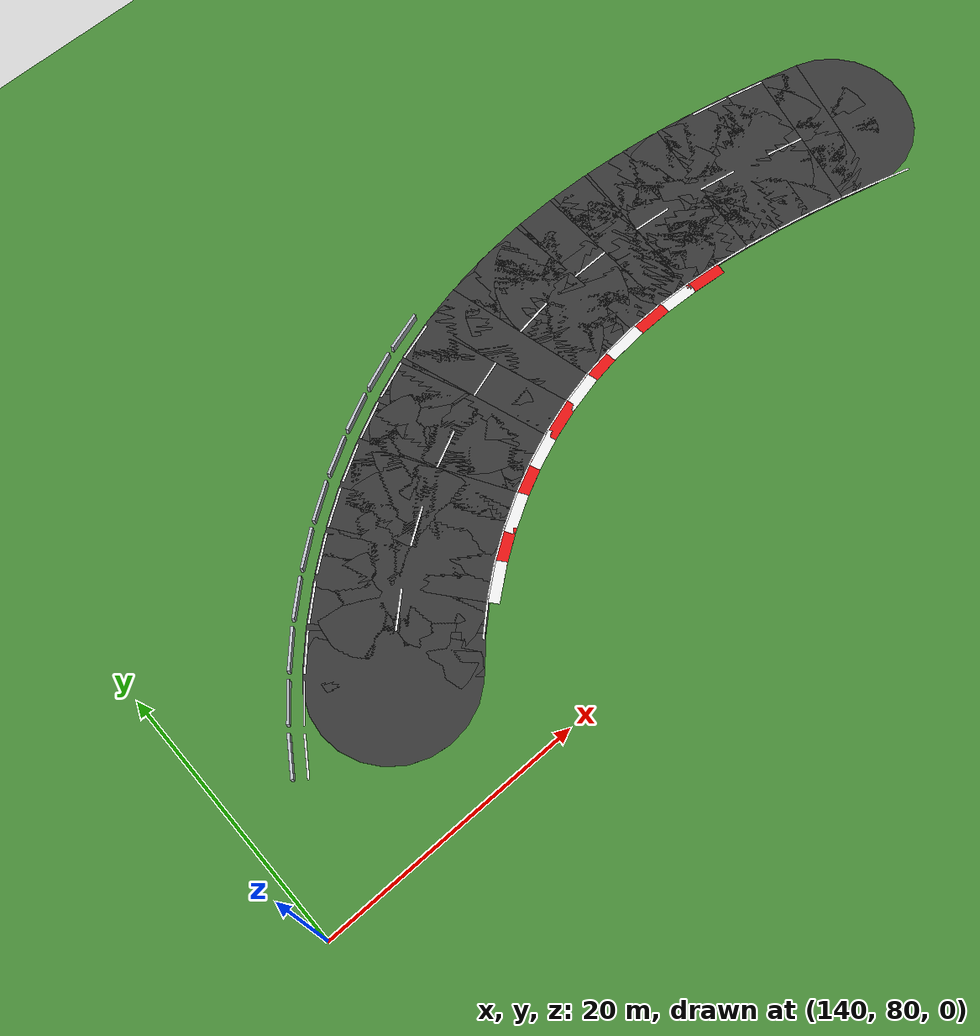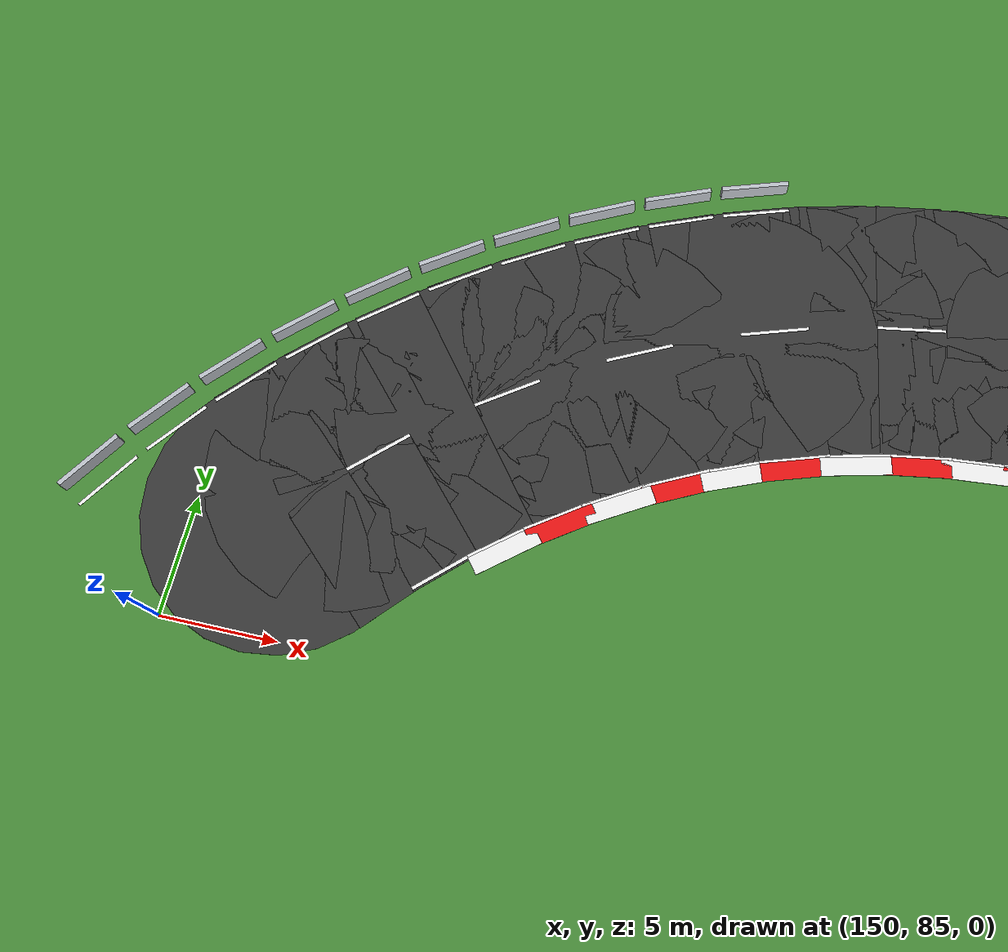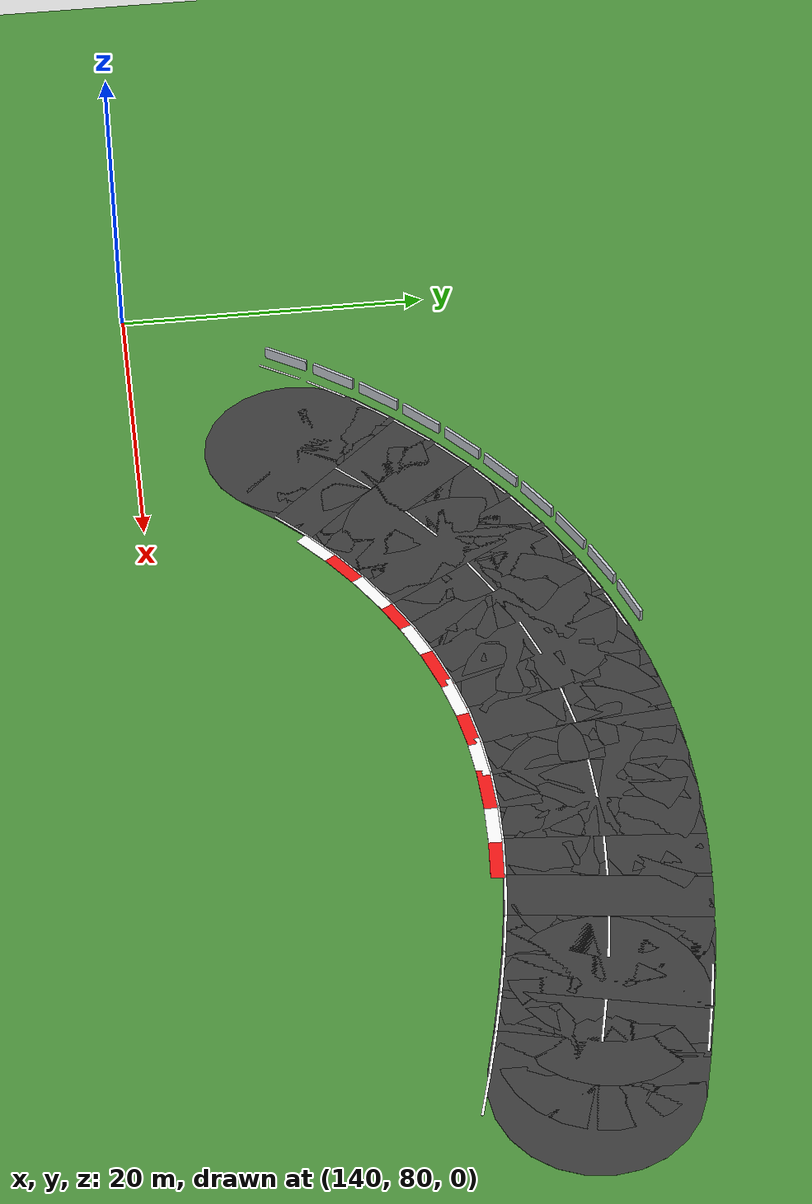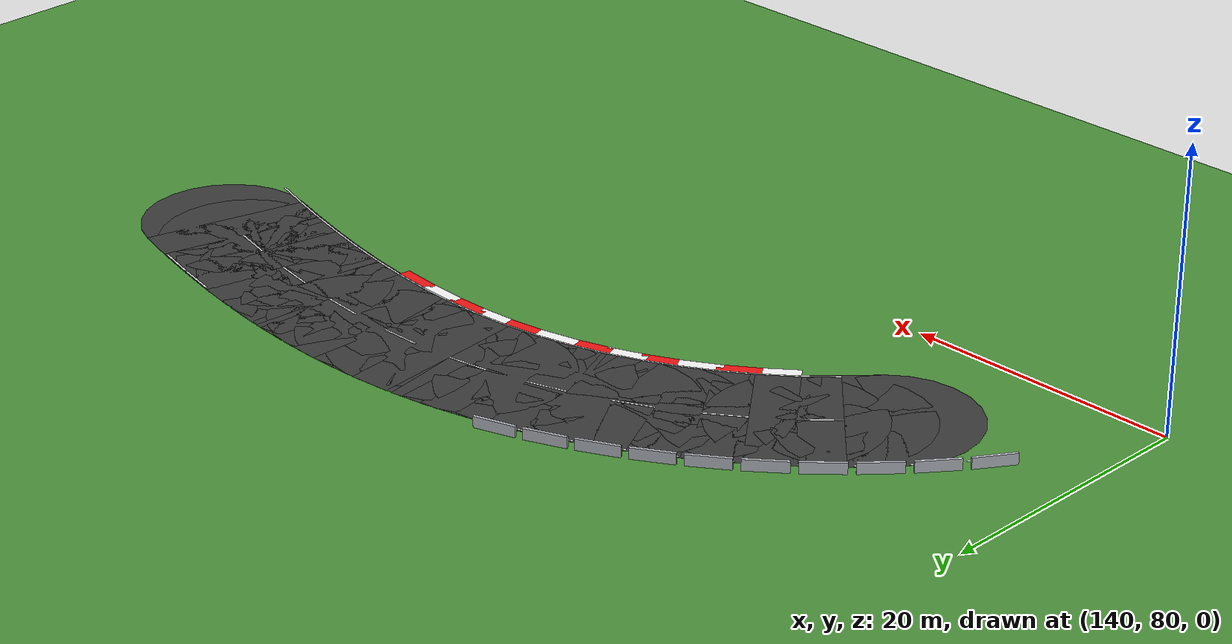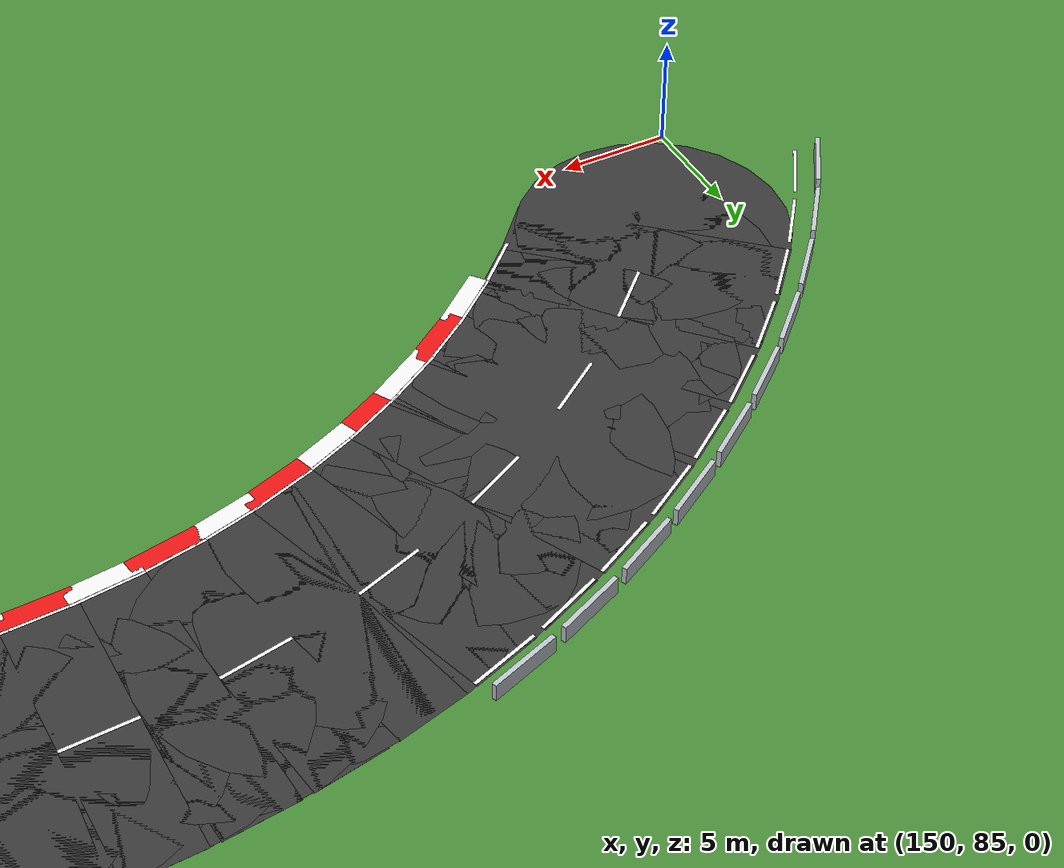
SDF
<sdf version="1.6">
 <world name="sem_silesia_ring_2026">
  <model name="ground_plane">
   <static>true</static>
   <link name="link">
    <collision name="collision">
     <geometry><plane><normal>0 0 1</normal><size>1200 1200</size></plane></geometry>
     <surface><friction><ode><mu>0.6</mu><mu2>0.6</mu2></ode></friction></surface>
    </collision>
    <visual name="visual">
     <geometry><plane><normal>0 0 1</normal><size>1200 1200</size></plane></geometry>
     <material><ambient>0.28 0.55 0.22 1</ambient><diffuse>0.28 0.55 0.22 1</diffuse></material>
    </visual>
   </link>
  </model>
  <model name="wl_L_s75">
   <static>true</static>
   <pose>146.0650 89.8981 0.0070 0 0 0.9914</pose>
   <link name="link">
    <visual name="v">
     <geometry><box><size>3.0017 0.1500 0.0080</size></box></geometry>
     <material><ambient>0.95 0.95 0.95 1</ambient><diffuse>0.95 0.95 0.95 1</diffuse></material>
    </visual>
   </link>
  </model>
  <model name="arm_outL_75">
   <static>true</static>
   <pose>145.2701 90.4182 0.4000 0 0 0.9914</pose>
   <link name="link">
    <visual name="v">
     <geometry><box><size>3.0017 0.2000 0.8000</size></box></geometry>
     <material><ambient>0.75 0.77 0.80 1</ambient><diffuse>0.75 0.77 0.80 1</diffuse></material>
    </visual>
    <collision name="c">
     <geometry><box><size>3.0017 0.2000 0.8000</size></box></geometry>
     <surface><friction><ode><mu>0.8</mu><mu2>0.8</mu2></ode></friction></surface>
    </collision>
   </link>
  </model>
  <model name="wl_L_s76">
   <static>true</static>
   <pose>148.0866 92.7280 0.0070 0 0 0.9096</pose>
   <link name="link">
    <visual name="v">
     <geometry><box><size>3.0017 0.1500 0.0080</size></box></geometry>
     <material><ambient>0.95 0.95 0.95 1</ambient><diffuse>0.95 0.95 0.95 1</diffuse></material>
    </visual>
   </link>
  </model>
  <model name="arm_outL_76">
   <static>true</static>
   <pose>147.3368 93.3113 0.4000 0 0 0.9096</pose>
   <link name="link">
    <visual name="v">
     <geometry><box><size>3.0017 0.2000 0.8000</size></box></geometry>
     <material><ambient>0.75 0.77 0.80 1</ambient><diffuse>0.75 0.77 0.80 1</diffuse></material>
    </visual>
    <collision name="c">
     <geometry><box><size>3.0017 0.2000 0.8000</size></box></geometry>
     <surface><friction><ode><mu>0.8</mu><mu2>0.8</mu2></ode></friction></surface>
    </collision>
   </link>
  </model>
  <model name="road_s77">
   <static>true</static>
   <pose>154.6374 91.4285 0.0030 0 0 0.8307</pose>
   <link name="link">
    <visual name="v">
     <geometry><box><size>3.0018 12.0000 0.0060</size></box></geometry>
     <material><ambient>0.22 0.22 0.22 1</ambient><diffuse>0.22 0.22 0.22 1</diffuse></material>
    </visual>
    <collision name="c">
     <geometry><box><size>3.0018 12.0000 0.0060</size></box></geometry>
     <surface><friction><ode><mu>0.9</mu><mu2>0.9</mu2></ode></friction></surface>
    </collision>
   </link>
  </model>
  <model name="road_jnt77">
   <static>true</static>
   <pose>153.6253 90.3202 0.0030 0 0 0</pose>
   <link name="link">
    <visual name="v">
     <geometry><cylinder><radius>6.0000</radius><length>0.0060</length></cylinder></geometry>
     <material><ambient>0.22 0.22 0.22 1</ambient><diffuse>0.22 0.22 0.22 1</diffuse></material>
    </visual>
    <collision name="c">
     <geometry><cylinder><radius>6.0000</radius><length>0.0060</length></cylinder></geometry>
     <surface><friction><ode><mu>0.9</mu><mu2>0.9</mu2></ode></friction></surface>
    </collision>
   </link>
  </model>
  <model name="wl_L_s77">
   <static>true</static>
   <pose>150.3177 95.3733 0.0070 0 0 0.8307</pose>
   <link name="link">
    <visual name="v">
     <geometry><box><size>3.0018 0.1500 0.0080</size></box></geometry>
     <material><ambient>0.95 0.95 0.95 1</ambient><diffuse>0.95 0.95 0.95 1</diffuse></material>
    </visual>
   </link>
  </model>
  <model name="arm_outL_77">
   <static>true</static>
   <pose>149.6162 96.0140 0.4000 0 0 0.8307</pose>
   <link name="link">
    <visual name="v">
     <geometry><box><size>3.0018 0.2000 0.8000</size></box></geometry>
     <material><ambient>0.75 0.77 0.80 1</ambient><diffuse>0.75 0.77 0.80 1</diffuse></material>
    </visual>
    <collision name="c">
     <geometry><box><size>3.0018 0.2000 0.8000</size></box></geometry>
     <surface><friction><ode><mu>0.8</mu><mu2>0.8</mu2></ode></friction></surface>
    </collision>
   </link>
  </model>
  <model name="road_s78">
   <static>true</static>
   <pose>156.7433 93.5646 0.0030 0 0 0.7544</pose>
   <link name="link">
    <visual name="v">
     <geometry><box><size>3.0018 12.0000 0.0060</size></box></geometry>
     <material><ambient>0.22 0.22 0.22 1</ambient><diffuse>0.22 0.22 0.22 1</diffuse></material>
    </visual>
    <collision name="c">
     <geometry><box><size>3.0018 12.0000 0.0060</size></box></geometry>
     <surface><friction><ode><mu>0.9</mu><mu2>0.9</mu2></ode></friction></surface>
    </collision>
   </link>
  </model>
  <model name="road_jnt78">
   <static>true</static>
   <pose>155.6495 92.5368 0.0030 0 0 0</pose>
   <link name="link">
    <visual name="v">
     <geometry><cylinder><radius>6.0000</radius><length>0.0060</length></cylinder></geometry>
     <material><ambient>0.22 0.22 0.22 1</ambient><diffuse>0.22 0.22 0.22 1</diffuse></material>
    </visual>
    <collision name="c">
     <geometry><cylinder><radius>6.0000</radius><length>0.0060</length></cylinder></geometry>
     <surface><friction><ode><mu>0.9</mu><mu2>0.9</mu2></ode></friction></surface>
    </collision>
   </link>
  </model>
  <model name="wl_L_s78">
   <static>true</static>
   <pose>152.7371 97.8276 0.0070 0 0 0.7544</pose>
   <link name="link">
    <visual name="v">
     <geometry><box><size>3.0018 0.1500 0.0080</size></box></geometry>
     <material><ambient>0.95 0.95 0.95 1</ambient><diffuse>0.95 0.95 0.95 1</diffuse></material>
    </visual>
   </link>
  </model>
  <model name="wl_R_s78">
   <static>true</static>
   <pose>160.7495 89.3016 0.0070 0 0 0.7544</pose>
   <link name="link">
    <visual name="v">
     <geometry><box><size>3.0018 0.1500 0.0080</size></box></geometry>
     <material><ambient>0.95 0.95 0.95 1</ambient><diffuse>0.95 0.95 0.95 1</diffuse></material>
    </visual>
   </link>
  </model>
  <model name="cd_s78">
   <static>true</static>
   <pose>156.7433 93.5646 0.0070 0 0 0.7544</pose>
   <link name="link">
    <visual name="v">
     <geometry><box><size>3.0018 0.1500 0.0080</size></box></geometry>
     <material><ambient>0.95 0.95 0.95 1</ambient><diffuse>0.95 0.95 0.95 1</diffuse></material>
    </visual>
   </link>
  </model>
  <model name="arm_outL_78">
   <static>true</static>
   <pose>152.0865 98.5199 0.4000 0 0 0.7544</pose>
   <link name="link">
    <visual name="v">
     <geometry><box><size>3.0018 0.2000 0.8000</size></box></geometry>
     <material><ambient>0.75 0.77 0.80 1</ambient><diffuse>0.75 0.77 0.80 1</diffuse></material>
    </visual>
    <collision name="c">
     <geometry><box><size>3.0018 0.2000 0.8000</size></box></geometry>
     <surface><friction><ode><mu>0.8</mu><mu2>0.8</mu2></ode></friction></surface>
    </collision>
   </link>
  </model>
  <model name="road_s79">
   <static>true</static>
   <pose>159.0042 95.5361 0.0030 0 0 0.6799</pose>
   <link name="link">
    <visual name="v">
     <geometry><box><size>3.0019 12.0000 0.0060</size></box></geometry>
     <material><ambient>0.22 0.22 0.22 1</ambient><diffuse>0.22 0.22 0.22 1</diffuse></material>
    </visual>
    <collision name="c">
     <geometry><box><size>3.0019 12.0000 0.0060</size></box></geometry>
     <surface><friction><ode><mu>0.9</mu><mu2>0.9</mu2></ode></friction></surface>
    </collision>
   </link>
  </model>
  <model name="road_jnt79">
   <static>true</static>
   <pose>157.8370 94.5925 0.0030 0 0 0</pose>
   <link name="link">
    <visual name="v">
     <geometry><cylinder><radius>6.0000</radius><length>0.0060</length></cylinder></geometry>
     <material><ambient>0.22 0.22 0.22 1</ambient><diffuse>0.22 0.22 0.22 1</diffuse></material>
    </visual>
    <collision name="c">
     <geometry><cylinder><radius>6.0000</radius><length>0.0060</length></cylinder></geometry>
     <surface><friction><ode><mu>0.9</mu><mu2>0.9</mu2></ode></friction></surface>
    </collision>
   </link>
  </model>
  <model name="wl_L_s79">
   <static>true</static>
   <pose>155.3262 100.0853 0.0070 0 0 0.6799</pose>
   <link name="link">
    <visual name="v">
     <geometry><box><size>3.0019 0.1500 0.0080</size></box></geometry>
     <material><ambient>0.95 0.95 0.95 1</ambient><diffuse>0.95 0.95 0.95 1</diffuse></material>
    </visual>
   </link>
  </model>
  <model name="wl_R_s79">
   <static>true</static>
   <pose>162.6822 90.9870 0.0070 0 0 0.6799</pose>
   <link name="link">
    <visual name="v">
     <geometry><box><size>3.0019 0.1500 0.0080</size></box></geometry>
     <material><ambient>0.95 0.95 0.95 1</ambient><diffuse>0.95 0.95 0.95 1</diffuse></material>
    </visual>
   </link>
  </model>
  <model name="kerb_R_79">
   <static>true</static>
   <pose>162.9651 90.6370 0.0120 0 0 0.6799</pose>
   <link name="link">
    <visual name="v">
     <geometry><box><size>3.0019 0.8000 0.0160</size></box></geometry>
     <material><ambient>0.95 0.95 0.95 1</ambient><diffuse>0.95 0.95 0.95 1</diffuse></material>
    </visual>
   </link>
  </model>
  <model name="arm_outL_79">
   <static>true</static>
   <pose>154.7289 100.8241 0.4000 0 0 0.6799</pose>
   <link name="link">
    <visual name="v">
     <geometry><box><size>3.0019 0.2000 0.8000</size></box></geometry>
     <material><ambient>0.75 0.77 0.80 1</ambient><diffuse>0.75 0.77 0.80 1</diffuse></material>
    </visual>
    <collision name="c">
     <geometry><box><size>3.0019 0.2000 0.8000</size></box></geometry>
     <surface><friction><ode><mu>0.8</mu><mu2>0.8</mu2></ode></friction></surface>
    </collision>
   </link>
  </model>
  <model name="road_s80">
   <static>true</static>
   <pose>161.4044 97.3356 0.0030 0 0 0.6067</pose>
   <link name="link">
    <visual name="v">
     <geometry><box><size>3.0019 12.0000 0.0060</size></box></geometry>
     <material><ambient>0.22 0.22 0.22 1</ambient><diffuse>0.22 0.22 0.22 1</diffuse></material>
    </visual>
    <collision name="c">
     <geometry><box><size>3.0019 12.0000 0.0060</size></box></geometry>
     <surface><friction><ode><mu>0.9</mu><mu2>0.9</mu2></ode></friction></surface>
    </collision>
   </link>
  </model>
  <model name="road_jnt80">
   <static>true</static>
   <pose>160.1714 96.4798 0.0030 0 0 0</pose>
   <link name="link">
    <visual name="v">
     <geometry><cylinder><radius>6.0000</radius><length>0.0060</length></cylinder></geometry>
     <material><ambient>0.22 0.22 0.22 1</ambient><diffuse>0.22 0.22 0.22 1</diffuse></material>
    </visual>
    <collision name="c">
     <geometry><cylinder><radius>6.0000</radius><length>0.0060</length></cylinder></geometry>
     <surface><friction><ode><mu>0.9</mu><mu2>0.9</mu2></ode></friction></surface>
    </collision>
   </link>
  </model>
  <model name="wl_L_s80">
   <static>true</static>
   <pose>158.0688 102.1415 0.0070 0 0 0.6067</pose>
   <link name="link">
    <visual name="v">
     <geometry><box><size>3.0019 0.1500 0.0080</size></box></geometry>
     <material><ambient>0.95 0.95 0.95 1</ambient><diffuse>0.95 0.95 0.95 1</diffuse></material>
    </visual>
   </link>
  </model>
  <model name="wl_R_s80">
   <static>true</static>
   <pose>164.7400 92.5297 0.0070 0 0 0.6067</pose>
   <link name="link">
    <visual name="v">
     <geometry><box><size>3.0019 0.1500 0.0080</size></box></geometry>
     <material><ambient>0.95 0.95 0.95 1</ambient><diffuse>0.95 0.95 0.95 1</diffuse></material>
    </visual>
   </link>
  </model>
  <model name="cd_s80">
   <static>true</static>
   <pose>161.4044 97.3356 0.0070 0 0 0.6067</pose>
   <link name="link">
    <visual name="v">
     <geometry><box><size>3.0019 0.1500 0.0080</size></box></geometry>
     <material><ambient>0.95 0.95 0.95 1</ambient><diffuse>0.95 0.95 0.95 1</diffuse></material>
    </visual>
   </link>
  </model>
  <model name="kerb_R_80">
   <static>true</static>
   <pose>164.9966 92.1601 0.0120 0 0 0.6067</pose>
   <link name="link">
    <visual name="v">
     <geometry><box><size>3.0019 0.8000 0.0160</size></box></geometry>
     <material><ambient>0.92 0.08 0.08 1</ambient><diffuse>0.92 0.08 0.08 1</diffuse></material>
    </visual>
   </link>
  </model>
  <model name="arm_outL_80">
   <static>true</static>
   <pose>157.5271 102.9219 0.4000 0 0 0.6067</pose>
   <link name="link">
    <visual name="v">
     <geometry><box><size>3.0019 0.2000 0.8000</size></box></geometry>
     <material><ambient>0.75 0.77 0.80 1</ambient><diffuse>0.75 0.77 0.80 1</diffuse></material>
    </visual>
    <collision name="c">
     <geometry><box><size>3.0019 0.2000 0.8000</size></box></geometry>
     <surface><friction><ode><mu>0.8</mu><mu2>0.8</mu2></ode></friction></surface>
    </collision>
   </link>
  </model>
  <model name="road_s81">
   <static>true</static>
   <pose>163.9293 98.9557 0.0030 0 0 0.5342</pose>
   <link name="link">
    <visual name="v">
     <geometry><box><size>3.0019 12.0000 0.0060</size></box></geometry>
     <material><ambient>0.22 0.22 0.22 1</ambient><diffuse>0.22 0.22 0.22 1</diffuse></material>
    </visual>
    <collision name="c">
     <geometry><box><size>3.0019 12.0000 0.0060</size></box></geometry>
     <surface><friction><ode><mu>0.9</mu><mu2>0.9</mu2></ode></friction></surface>
    </collision>
   </link>
  </model>
  <model name="road_jnt81">
   <static>true</static>
   <pose>162.6375 98.1914 0.0030 0 0 0</pose>
   <link name="link">
    <visual name="v">
     <geometry><cylinder><radius>6.0000</radius><length>0.0060</length></cylinder></geometry>
     <material><ambient>0.22 0.22 0.22 1</ambient><diffuse>0.22 0.22 0.22 1</diffuse></material>
    </visual>
    <collision name="c">
     <geometry><cylinder><radius>6.0000</radius><length>0.0060</length></cylinder></geometry>
     <surface><friction><ode><mu>0.9</mu><mu2>0.9</mu2></ode></friction></surface>
    </collision>
   </link>
  </model>
  <model name="wl_L_s81">
   <static>true</static>
   <pose>160.9506 103.9906 0.0070 0 0 0.5342</pose>
   <link name="link">
    <visual name="v">
     <geometry><box><size>3.0019 0.1500 0.0080</size></box></geometry>
     <material><ambient>0.95 0.95 0.95 1</ambient><diffuse>0.95 0.95 0.95 1</diffuse></material>
    </visual>
   </link>
  </model>
  <model name="wl_R_s81">
   <static>true</static>
   <pose>166.9079 93.9207 0.0070 0 0 0.5342</pose>
   <link name="link">
    <visual name="v">
     <geometry><box><size>3.0019 0.1500 0.0080</size></box></geometry>
     <material><ambient>0.95 0.95 0.95 1</ambient><diffuse>0.95 0.95 0.95 1</diffuse></material>
    </visual>
   </link>
  </model>
  <model name="kerb_R_81">
   <static>true</static>
   <pose>167.1370 93.5334 0.0120 0 0 0.5342</pose>
   <link name="link">
    <visual name="v">
     <geometry><box><size>3.0019 0.8000 0.0160</size></box></geometry>
     <material><ambient>0.95 0.95 0.95 1</ambient><diffuse>0.95 0.95 0.95 1</diffuse></material>
    </visual>
   </link>
  </model>
  <model name="arm_outL_81">
   <static>true</static>
   <pose>160.4669 104.8082 0.4000 0 0 0.5342</pose>
   <link name="link">
    <visual name="v">
     <geometry><box><size>3.0019 0.2000 0.8000</size></box></geometry>
     <material><ambient>0.75 0.77 0.80 1</ambient><diffuse>0.75 0.77 0.80 1</diffuse></material>
    </visual>
    <collision name="c">
     <geometry><box><size>3.0019 0.2000 0.8000</size></box></geometry>
     <surface><friction><ode><mu>0.8</mu><mu2>0.8</mu2></ode></friction></surface>
    </collision>
   </link>
  </model>
  <model name="road_s82">
   <static>true</static>
   <pose>166.5649 100.3885 0.0030 0 0 0.4617</pose>
   <link name="link">
    <visual name="v">
     <geometry><box><size>3.0019 12.0000 0.0060</size></box></geometry>
     <material><ambient>0.22 0.22 0.22 1</ambient><diffuse>0.22 0.22 0.22 1</diffuse></material>
    </visual>
    <collision name="c">
     <geometry><box><size>3.0019 12.0000 0.0060</size></box></geometry>
     <surface><friction><ode><mu>0.9</mu><mu2>0.9</mu2></ode></friction></surface>
    </collision>
   </link>
  </model>
  <model name="road_jnt82">
   <static>true</static>
   <pose>165.2211 99.7199 0.0030 0 0 0</pose>
   <link name="link">
    <visual name="v">
     <geometry><cylinder><radius>6.0000</radius><length>0.0060</length></cylinder></geometry>
     <material><ambient>0.22 0.22 0.22 1</ambient><diffuse>0.22 0.22 0.22 1</diffuse></material>
    </visual>
    <collision name="c">
     <geometry><cylinder><radius>6.0000</radius><length>0.0060</length></cylinder></geometry>
     <surface><friction><ode><mu>0.9</mu><mu2>0.9</mu2></ode></friction></surface>
    </collision>
   </link>
  </model>
  <model name="wl_L_s82">
   <static>true</static>
   <pose>163.9589 105.6260 0.0070 0 0 0.4617</pose>
   <link name="link">
    <visual name="v">
     <geometry><box><size>3.0019 0.1500 0.0080</size></box></geometry>
     <material><ambient>0.95 0.95 0.95 1</ambient><diffuse>0.95 0.95 0.95 1</diffuse></material>
    </visual>
   </link>
  </model>
  <model name="wl_R_s82">
   <static>true</static>
   <pose>169.1709 95.1510 0.0070 0 0 0.4617</pose>
   <link name="link">
    <visual name="v">
     <geometry><box><size>3.0019 0.1500 0.0080</size></box></geometry>
     <material><ambient>0.95 0.95 0.95 1</ambient><diffuse>0.95 0.95 0.95 1</diffuse></material>
    </visual>
   </link>
  </model>
  <model name="cd_s82">
   <static>true</static>
   <pose>166.5649 100.3885 0.0070 0 0 0.4617</pose>
   <link name="link">
    <visual name="v">
     <geometry><box><size>3.0019 0.1500 0.0080</size></box></geometry>
     <material><ambient>0.95 0.95 0.95 1</ambient><diffuse>0.95 0.95 0.95 1</diffuse></material>
    </visual>
   </link>
  </model>
  <model name="kerb_R_82">
   <static>true</static>
   <pose>169.3713 94.7481 0.0120 0 0 0.4617</pose>
   <link name="link">
    <visual name="v">
     <geometry><box><size>3.0019 0.8000 0.0160</size></box></geometry>
     <material><ambient>0.92 0.08 0.08 1</ambient><diffuse>0.92 0.08 0.08 1</diffuse></material>
    </visual>
   </link>
  </model>
  <model name="arm_outL_82">
   <static>true</static>
   <pose>163.5357 106.4765 0.4000 0 0 0.4617</pose>
   <link name="link">
    <visual name="v">
     <geometry><box><size>3.0019 0.2000 0.8000</size></box></geometry>
     <material><ambient>0.75 0.77 0.80 1</ambient><diffuse>0.75 0.77 0.80 1</diffuse></material>
    </visual>
    <collision name="c">
     <geometry><box><size>3.0019 0.2000 0.8000</size></box></geometry>
     <surface><friction><ode><mu>0.8</mu><mu2>0.8</mu2></ode></friction></surface>
    </collision>
   </link>
  </model>
  <model name="road_s83">
   <static>true</static>
   <pose>169.2977 101.6257 0.0030 0 0 0.3885</pose>
   <link name="link">
    <visual name="v">
     <geometry><box><size>3.0019 12.0000 0.0060</size></box></geometry>
     <material><ambient>0.22 0.22 0.22 1</ambient><diffuse>0.22 0.22 0.22 1</diffuse></material>
    </visual>
    <collision name="c">
     <geometry><box><size>3.0019 12.0000 0.0060</size></box></geometry>
     <surface><friction><ode><mu>0.9</mu><mu2>0.9</mu2></ode></friction></surface>
    </collision>
   </link>
  </model>
  <model name="road_jnt83">
   <static>true</static>
   <pose>167.9086 101.0571 0.0030 0 0 0</pose>
   <link name="link">
    <visual name="v">
     <geometry><cylinder><radius>6.0000</radius><length>0.0060</length></cylinder></geometry>
     <material><ambient>0.22 0.22 0.22 1</ambient><diffuse>0.22 0.22 0.22 1</diffuse></material>
    </visual>
    <collision name="c">
     <geometry><cylinder><radius>6.0000</radius><length>0.0060</length></cylinder></geometry>
     <surface><friction><ode><mu>0.9</mu><mu2>0.9</mu2></ode></friction></surface>
    </collision>
   </link>
  </model>
  <model name="wl_L_s83">
   <static>true</static>
   <pose>167.0815 107.0397 0.0070 0 0 0.3885</pose>
   <link name="link">
    <visual name="v">
     <geometry><box><size>3.0019 0.1500 0.0080</size></box></geometry>
     <material><ambient>0.95 0.95 0.95 1</ambient><diffuse>0.95 0.95 0.95 1</diffuse></material>
    </visual>
   </link>
  </model>
  <model name="wl_R_s83">
   <static>true</static>
   <pose>171.5139 96.2118 0.0070 0 0 0.3885</pose>
   <link name="link">
    <visual name="v">
     <geometry><box><size>3.0019 0.1500 0.0080</size></box></geometry>
     <material><ambient>0.95 0.95 0.95 1</ambient><diffuse>0.95 0.95 0.95 1</diffuse></material>
    </visual>
   </link>
  </model>
  <model name="kerb_R_83">
   <static>true</static>
   <pose>171.6844 95.7953 0.0120 0 0 0.3885</pose>
   <link name="link">
    <visual name="v">
     <geometry><box><size>3.0019 0.8000 0.0160</size></box></geometry>
     <material><ambient>0.95 0.95 0.95 1</ambient><diffuse>0.95 0.95 0.95 1</diffuse></material>
    </visual>
   </link>
  </model>
  <model name="arm_outL_83">
   <static>true</static>
   <pose>166.7216 107.9189 0.4000 0 0 0.3885</pose>
   <link name="link">
    <visual name="v">
     <geometry><box><size>3.0019 0.2000 0.8000</size></box></geometry>
     <material><ambient>0.75 0.77 0.80 1</ambient><diffuse>0.75 0.77 0.80 1</diffuse></material>
    </visual>
    <collision name="c">
     <geometry><box><size>3.0019 0.2000 0.8000</size></box></geometry>
     <surface><friction><ode><mu>0.8</mu><mu2>0.8</mu2></ode></friction></surface>
    </collision>
   </link>
  </model>
  <model name="road_s84">
   <static>true</static>
   <pose>172.1142 102.6581 0.0030 0 0 0.3141</pose>
   <link name="link">
    <visual name="v">
     <geometry><box><size>3.0018 12.0000 0.0060</size></box></geometry>
     <material><ambient>0.22 0.22 0.22 1</ambient><diffuse>0.22 0.22 0.22 1</diffuse></material>
    </visual>
    <collision name="c">
     <geometry><box><size>3.0018 12.0000 0.0060</size></box></geometry>
     <surface><friction><ode><mu>0.9</mu><mu2>0.9</mu2></ode></friction></surface>
    </collision>
   </link>
  </model>
  <model name="road_jnt84">
   <static>true</static>
   <pose>170.6868 102.1943 0.0030 0 0 0</pose>
   <link name="link">
    <visual name="v">
     <geometry><cylinder><radius>6.0000</radius><length>0.0060</length></cylinder></geometry>
     <material><ambient>0.22 0.22 0.22 1</ambient><diffuse>0.22 0.22 0.22 1</diffuse></material>
    </visual>
    <collision name="c">
     <geometry><cylinder><radius>6.0000</radius><length>0.0060</length></cylinder></geometry>
     <surface><friction><ode><mu>0.9</mu><mu2>0.9</mu2></ode></friction></surface>
    </collision>
   </link>
  </model>
  <model name="wl_L_s84">
   <static>true</static>
   <pose>170.3068 108.2218 0.0070 0 0 0.3141</pose>
   <link name="link">
    <visual name="v">
     <geometry><box><size>3.0018 0.1500 0.0080</size></box></geometry>
     <material><ambient>0.95 0.95 0.95 1</ambient><diffuse>0.95 0.95 0.95 1</diffuse></material>
    </visual>
   </link>
  </model>
  <model name="wl_R_s84">
   <static>true</static>
   <pose>173.9217 97.0943 0.0070 0 0 0.3141</pose>
   <link name="link">
    <visual name="v">
     <geometry><box><size>3.0018 0.1500 0.0080</size></box></geometry>
     <material><ambient>0.95 0.95 0.95 1</ambient><diffuse>0.95 0.95 0.95 1</diffuse></material>
    </visual>
   </link>
  </model>
  <model name="cd_s84">
   <static>true</static>
   <pose>172.1142 102.6581 0.0070 0 0 0.3141</pose>
   <link name="link">
    <visual name="v">
     <geometry><box><size>3.0018 0.1500 0.0080</size></box></geometry>
     <material><ambient>0.95 0.95 0.95 1</ambient><diffuse>0.95 0.95 0.95 1</diffuse></material>
    </visual>
   </link>
  </model>
  <model name="kerb_R_84">
   <static>true</static>
   <pose>174.0607 96.6663 0.0120 0 0 0.3141</pose>
   <link name="link">
    <visual name="v">
     <geometry><box><size>3.0018 0.8000 0.0160</size></box></geometry>
     <material><ambient>0.92 0.08 0.08 1</ambient><diffuse>0.92 0.08 0.08 1</diffuse></material>
    </visual>
   </link>
  </model>
  <model name="arm_outL_84">
   <static>true</static>
   <pose>170.0132 109.1254 0.4000 0 0 0.3141</pose>
   <link name="link">
    <visual name="v">
     <geometry><box><size>3.0018 0.2000 0.8000</size></box></geometry>
     <material><ambient>0.75 0.77 0.80 1</ambient><diffuse>0.75 0.77 0.80 1</diffuse></material>
    </visual>
    <collision name="c">
     <geometry><box><size>3.0018 0.2000 0.8000</size></box></geometry>
     <surface><friction><ode><mu>0.8</mu><mu2>0.8</mu2></ode></friction></surface>
    </collision>
   </link>
  </model>
  <model name="road_s85">
   <static>true</static>
   <pose>175.0004 103.4754 0.0030 0 0 0.2378</pose>
   <link name="link">
    <visual name="v">
     <geometry><box><size>3.0018 12.0000 0.0060</size></box></geometry>
     <material><ambient>0.22 0.22 0.22 1</ambient><diffuse>0.22 0.22 0.22 1</diffuse></material>
    </visual>
    <collision name="c">
     <geometry><box><size>3.0018 12.0000 0.0060</size></box></geometry>
     <surface><friction><ode><mu>0.9</mu><mu2>0.9</mu2></ode></friction></surface>
    </collision>
   </link>
  </model>
  <model name="road_jnt85">
   <static>true</static>
   <pose>173.5417 103.1218 0.0030 0 0 0</pose>
   <link name="link">
    <visual name="v">
     <geometry><cylinder><radius>6.0000</radius><length>0.0060</length></cylinder></geometry>
     <material><ambient>0.22 0.22 0.22 1</ambient><diffuse>0.22 0.22 0.22 1</diffuse></material>
    </visual>
    <collision name="c">
     <geometry><cylinder><radius>6.0000</radius><length>0.0060</length></cylinder></geometry>
     <surface><friction><ode><mu>0.9</mu><mu2>0.9</mu2></ode></friction></surface>
    </collision>
   </link>
  </model>
  <model name="wl_R_s85">
   <static>true</static>
   <pose>176.3786 97.7901 0.0070 0 0 0.2378</pose>
   <link name="link">
    <visual name="v">
     <geometry><box><size>3.0018 0.1500 0.0080</size></box></geometry>
     <material><ambient>0.95 0.95 0.95 1</ambient><diffuse>0.95 0.95 0.95 1</diffuse></material>
    </visual>
   </link>
  </model>
  <model name="kerb_R_85">
   <static>true</static>
   <pose>176.4847 97.3528 0.0120 0 0 0.2378</pose>
   <link name="link">
    <visual name="v">
     <geometry><box><size>3.0018 0.8000 0.0160</size></box></geometry>
     <material><ambient>0.95 0.95 0.95 1</ambient><diffuse>0.95 0.95 0.95 1</diffuse></material>
    </visual>
   </link>
  </model>
  <model name="road_s86">
   <static>true</static>
   <pose>177.9407 104.0685 0.0030 0 0 0.1602</pose>
   <link name="link">
    <visual name="v">
     <geometry><box><size>3.0018 12.0000 0.0060</size></box></geometry>
     <material><ambient>0.22 0.22 0.22 1</ambient><diffuse>0.22 0.22 0.22 1</diffuse></material>
    </visual>
    <collision name="c">
     <geometry><box><size>3.0018 12.0000 0.0060</size></box></geometry>
     <surface><friction><ode><mu>0.9</mu><mu2>0.9</mu2></ode></friction></surface>
    </collision>
   </link>
  </model>
  <model name="road_jnt86">
   <static>true</static>
   <pose>176.4590 103.8290 0.0030 0 0 0</pose>
   <link name="link">
    <visual name="v">
     <geometry><cylinder><radius>6.0000</radius><length>0.0060</length></cylinder></geometry>
     <material><ambient>0.22 0.22 0.22 1</ambient><diffuse>0.22 0.22 0.22 1</diffuse></material>
    </visual>
    <collision name="c">
     <geometry><cylinder><radius>6.0000</radius><length>0.0060</length></cylinder></geometry>
     <surface><friction><ode><mu>0.9</mu><mu2>0.9</mu2></ode></friction></surface>
    </collision>
   </link>
  </model>
  <model name="wl_R_s86">
   <static>true</static>
   <pose>178.8741 98.2935 0.0070 0 0 0.1602</pose>
   <link name="link">
    <visual name="v">
     <geometry><box><size>3.0018 0.1500 0.0080</size></box></geometry>
     <material><ambient>0.95 0.95 0.95 1</ambient><diffuse>0.95 0.95 0.95 1</diffuse></material>
    </visual>
   </link>
  </model>
  <model name="cd_s86">
   <static>true</static>
   <pose>177.9407 104.0685 0.0070 0 0 0.1602</pose>
   <link name="link">
    <visual name="v">
     <geometry><box><size>3.0018 0.1500 0.0080</size></box></geometry>
     <material><ambient>0.95 0.95 0.95 1</ambient><diffuse>0.95 0.95 0.95 1</diffuse></material>
    </visual>
   </link>
  </model>
  <model name="kerb_R_86">
   <static>true</static>
   <pose>178.9459 97.8492 0.0120 0 0 0.1602</pose>
   <link name="link">
    <visual name="v">
     <geometry><box><size>3.0018 0.8000 0.0160</size></box></geometry>
     <material><ambient>0.92 0.08 0.08 1</ambient><diffuse>0.92 0.08 0.08 1</diffuse></material>
    </visual>
   </link>
  </model>
  <model name="road_s87">
   <static>true</static>
   <pose>180.9176 104.4389 0.0030 0 0 0.0873</pose>
   <link name="link">
    <visual name="v">
     <geometry><box><size>3.0019 12.0000 0.0060</size></box></geometry>
     <material><ambient>0.22 0.22 0.22 1</ambient><diffuse>0.22 0.22 0.22 1</diffuse></material>
    </visual>
    <collision name="c">
     <geometry><box><size>3.0019 12.0000 0.0060</size></box></geometry>
     <surface><friction><ode><mu>0.9</mu><mu2>0.9</mu2></ode></friction></surface>
    </collision>
   </link>
  </model>
  <model name="road_jnt87">
   <static>true</static>
   <pose>179.4223 104.3080 0.0030 0 0 0</pose>
   <link name="link">
    <visual name="v">
     <geometry><cylinder><radius>6.0000</radius><length>0.0060</length></cylinder></geometry>
     <material><ambient>0.22 0.22 0.22 1</ambient><diffuse>0.22 0.22 0.22 1</diffuse></material>
    </visual>
    <collision name="c">
     <geometry><cylinder><radius>6.0000</radius><length>0.0060</length></cylinder></geometry>
     <surface><friction><ode><mu>0.9</mu><mu2>0.9</mu2></ode></friction></surface>
    </collision>
   </link>
  </model>
  <model name="wl_R_s87">
   <static>true</static>
   <pose>181.4278 98.6112 0.0070 0 0 0.0873</pose>
   <link name="link">
    <visual name="v">
     <geometry><box><size>3.0019 0.1500 0.0080</size></box></geometry>
     <material><ambient>0.95 0.95 0.95 1</ambient><diffuse>0.95 0.95 0.95 1</diffuse></material>
    </visual>
   </link>
  </model>
  <model name="kerb_R_87">
   <static>true</static>
   <pose>181.4670 98.1629 0.0120 0 0 0.0873</pose>
   <link name="link">
    <visual name="v">
     <geometry><box><size>3.0019 0.8000 0.0160</size></box></geometry>
     <material><ambient>0.95 0.95 0.95 1</ambient><diffuse>0.95 0.95 0.95 1</diffuse></material>
    </visual>
   </link>
  </model>
  <model name="road_s88">
   <static>true</static>
   <pose>183.9135 104.6023 0.0030 0 0 0.0216</pose>
   <link name="link">
    <visual name="v">
     <geometry><box><size>3.0021 12.0000 0.0060</size></box></geometry>
     <material><ambient>0.22 0.22 0.22 1</ambient><diffuse>0.22 0.22 0.22 1</diffuse></material>
    </visual>
    <collision name="c">
     <geometry><box><size>3.0021 12.0000 0.0060</size></box></geometry>
     <surface><friction><ode><mu>0.9</mu><mu2>0.9</mu2></ode></friction></surface>
    </collision>
   </link>
  </model>
  <model name="road_jnt88">
   <static>true</static>
   <pose>182.4128 104.5698 0.0030 0 0 0</pose>
   <link name="link">
    <visual name="v">
     <geometry><cylinder><radius>6.0000</radius><length>0.0060</length></cylinder></geometry>
     <material><ambient>0.22 0.22 0.22 1</ambient><diffuse>0.22 0.22 0.22 1</diffuse></material>
    </visual>
    <collision name="c">
     <geometry><cylinder><radius>6.0000</radius><length>0.0060</length></cylinder></geometry>
     <surface><friction><ode><mu>0.9</mu><mu2>0.9</mu2></ode></friction></surface>
    </collision>
   </link>
  </model>
  <model name="wl_R_s88">
   <static>true</static>
   <pose>184.0400 98.7536 0.0070 0 0 0.0216</pose>
   <link name="link">
    <visual name="v">
     <geometry><box><size>3.0021 0.1500 0.0080</size></box></geometry>
     <material><ambient>0.95 0.95 0.95 1</ambient><diffuse>0.95 0.95 0.95 1</diffuse></material>
    </visual>
   </link>
  </model>
  <model name="cd_s88">
   <static>true</static>
   <pose>183.9135 104.6023 0.0070 0 0 0.0216</pose>
   <link name="link">
    <visual name="v">
     <geometry><box><size>3.0021 0.1500 0.0080</size></box></geometry>
     <material><ambient>0.95 0.95 0.95 1</ambient><diffuse>0.95 0.95 0.95 1</diffuse></material>
    </visual>
   </link>
  </model>
  <model name="kerb_R_88">
   <static>true</static>
   <pose>184.0498 98.3037 0.0120 0 0 0.0216</pose>
   <link name="link">
    <visual name="v">
     <geometry><box><size>3.0021 0.8000 0.0160</size></box></geometry>
     <material><ambient>0.92 0.08 0.08 1</ambient><diffuse>0.92 0.08 0.08 1</diffuse></material>
    </visual>
   </link>
  </model>
  <model name="road_s89">
   <static>true</static>
   <pose>186.9143 104.5794 0.0030 0 0 -0.0368</pose>
   <link name="link">
    <visual name="v">
     <geometry><box><size>3.0022 12.0000 0.0060</size></box></geometry>
     <material><ambient>0.22 0.22 0.22 1</ambient><diffuse>0.22 0.22 0.22 1</diffuse></material>
    </visual>
    <collision name="c">
     <geometry><box><size>3.0022 12.0000 0.0060</size></box></geometry>
     <surface><friction><ode><mu>0.9</mu><mu2>0.9</mu2></ode></friction></surface>
    </collision>
   </link>
  </model>
  <model name="road_jnt89">
   <static>true</static>
   <pose>185.4142 104.6347 0.0030 0 0 0</pose>
   <link name="link">
    <visual name="v">
     <geometry><cylinder><radius>6.0000</radius><length>0.0060</length></cylinder></geometry>
     <material><ambient>0.22 0.22 0.22 1</ambient><diffuse>0.22 0.22 0.22 1</diffuse></material>
    </visual>
    <collision name="c">
     <geometry><cylinder><radius>6.0000</radius><length>0.0060</length></cylinder></geometry>
     <surface><friction><ode><mu>0.9</mu><mu2>0.9</mu2></ode></friction></surface>
    </collision>
   </link>
  </model>
  <model name="wl_R_s89">
   <static>true</static>
   <pose>186.6987 98.7334 0.0070 0 0 -0.0368</pose>
   <link name="link">
    <visual name="v">
     <geometry><box><size>3.0022 0.1500 0.0080</size></box></geometry>
     <material><ambient>0.95 0.95 0.95 1</ambient><diffuse>0.95 0.95 0.95 1</diffuse></material>
    </visual>
   </link>
  </model>
  <model name="kerb_R_89">
   <static>true</static>
   <pose>186.6822 98.2837 0.0120 0 0 -0.0368</pose>
   <link name="link">
    <visual name="v">
     <geometry><box><size>3.0022 0.8000 0.0160</size></box></geometry>
     <material><ambient>0.95 0.95 0.95 1</ambient><diffuse>0.95 0.95 0.95 1</diffuse></material>
    </visual>
   </link>
  </model>
  <model name="road_s90">
   <static>true</static>
   <pose>189.9096 104.3916 0.0030 0 0 -0.0884</pose>
   <link name="link">
    <visual name="v">
     <geometry><box><size>3.0022 12.0000 0.0060</size></box></geometry>
     <material><ambient>0.22 0.22 0.22 1</ambient><diffuse>0.22 0.22 0.22 1</diffuse></material>
    </visual>
    <collision name="c">
     <geometry><box><size>3.0022 12.0000 0.0060</size></box></geometry>
     <surface><friction><ode><mu>0.9</mu><mu2>0.9</mu2></ode></friction></surface>
    </collision>
   </link>
  </model>
  <model name="road_jnt90">
   <static>true</static>
   <pose>188.4143 104.5241 0.0030 0 0 0</pose>
   <link name="link">
    <visual name="v">
     <geometry><cylinder><radius>6.0000</radius><length>0.0060</length></cylinder></geometry>
     <material><ambient>0.22 0.22 0.22 1</ambient><diffuse>0.22 0.22 0.22 1</diffuse></material>
    </visual>
    <collision name="c">
     <geometry><cylinder><radius>6.0000</radius><length>0.0060</length></cylinder></geometry>
     <surface><friction><ode><mu>0.9</mu><mu2>0.9</mu2></ode></friction></surface>
    </collision>
   </link>
  </model>
  <model name="wl_R_s90">
   <static>true</static>
   <pose>189.3930 98.5644 0.0070 0 0 -0.0884</pose>
   <link name="link">
    <visual name="v">
     <geometry><box><size>3.0022 0.1500 0.0080</size></box></geometry>
     <material><ambient>0.95 0.95 0.95 1</ambient><diffuse>0.95 0.95 0.95 1</diffuse></material>
    </visual>
   </link>
  </model>
  <model name="cd_s90">
   <static>true</static>
   <pose>189.9096 104.3916 0.0070 0 0 -0.0884</pose>
   <link name="link">
    <visual name="v">
     <geometry><box><size>3.0022 0.1500 0.0080</size></box></geometry>
     <material><ambient>0.95 0.95 0.95 1</ambient><diffuse>0.95 0.95 0.95 1</diffuse></material>
    </visual>
   </link>
  </model>
  <model name="kerb_R_90">
   <static>true</static>
   <pose>189.3533 98.1162 0.0120 0 0 -0.0884</pose>
   <link name="link">
    <visual name="v">
     <geometry><box><size>3.0022 0.8000 0.0160</size></box></geometry>
     <material><ambient>0.92 0.08 0.08 1</ambient><diffuse>0.92 0.08 0.08 1</diffuse></material>
    </visual>
   </link>
  </model>
  <model name="road_s91">
   <static>true</static>
   <pose>192.8926 104.0592 0.0030 0 0 -0.1335</pose>
   <link name="link">
    <visual name="v">
     <geometry><box><size>3.0023 12.0000 0.0060</size></box></geometry>
     <material><ambient>0.22 0.22 0.22 1</ambient><diffuse>0.22 0.22 0.22 1</diffuse></material>
    </visual>
    <collision name="c">
     <geometry><box><size>3.0023 12.0000 0.0060</size></box></geometry>
     <surface><friction><ode><mu>0.9</mu><mu2>0.9</mu2></ode></friction></surface>
    </collision>
   </link>
  </model>
  <model name="road_jnt91">
   <static>true</static>
   <pose>191.4048 104.2590 0.0030 0 0 0</pose>
   <link name="link">
    <visual name="v">
     <geometry><cylinder><radius>6.0000</radius><length>0.0060</length></cylinder></geometry>
     <material><ambient>0.22 0.22 0.22 1</ambient><diffuse>0.22 0.22 0.22 1</diffuse></material>
    </visual>
    <collision name="c">
     <geometry><cylinder><radius>6.0000</radius><length>0.0060</length></cylinder></geometry>
     <surface><friction><ode><mu>0.9</mu><mu2>0.9</mu2></ode></friction></surface>
    </collision>
   </link>
  </model>
  <model name="wl_R_s91">
   <static>true</static>
   <pose>192.1138 98.2612 0.0070 0 0 -0.1335</pose>
   <link name="link">
    <visual name="v">
     <geometry><box><size>3.0023 0.1500 0.0080</size></box></geometry>
     <material><ambient>0.95 0.95 0.95 1</ambient><diffuse>0.95 0.95 0.95 1</diffuse></material>
    </visual>
   </link>
  </model>
  <model name="road_s92">
   <static>true</static>
   <pose>195.8593 103.6014 0.0030 0 0 -0.1727</pose>
   <link name="link">
    <visual name="v">
     <geometry><box><size>3.0024 12.0000 0.0060</size></box></geometry>
     <material><ambient>0.22 0.22 0.22 1</ambient><diffuse>0.22 0.22 0.22 1</diffuse></material>
    </visual>
    <collision name="c">
     <geometry><box><size>3.0024 12.0000 0.0060</size></box></geometry>
     <surface><friction><ode><mu>0.9</mu><mu2>0.9</mu2></ode></friction></surface>
    </collision>
   </link>
  </model>
  <model name="road_jnt92">
   <static>true</static>
   <pose>194.3804 103.8593 0.0030 0 0 0</pose>
   <link name="link">
    <visual name="v">
     <geometry><cylinder><radius>6.0000</radius><length>0.0060</length></cylinder></geometry>
     <material><ambient>0.22 0.22 0.22 1</ambient><diffuse>0.22 0.22 0.22 1</diffuse></material>
    </visual>
    <collision name="c">
     <geometry><cylinder><radius>6.0000</radius><length>0.0060</length></cylinder></geometry>
     <surface><friction><ode><mu>0.9</mu><mu2>0.9</mu2></ode></friction></surface>
    </collision>
   </link>
  </model>
  <model name="wl_R_s92">
   <static>true</static>
   <pose>194.8542 97.8384 0.0070 0 0 -0.1727</pose>
   <link name="link">
    <visual name="v">
     <geometry><box><size>3.0024 0.1500 0.0080</size></box></geometry>
     <material><ambient>0.95 0.95 0.95 1</ambient><diffuse>0.95 0.95 0.95 1</diffuse></material>
    </visual>
   </link>
  </model>
  <model name="cd_s92">
   <static>true</static>
   <pose>195.8593 103.6014 0.0070 0 0 -0.1727</pose>
   <link name="link">
    <visual name="v">
     <geometry><box><size>3.0024 0.1500 0.0080</size></box></geometry>
     <material><ambient>0.95 0.95 0.95 1</ambient><diffuse>0.95 0.95 0.95 1</diffuse></material>
    </visual>
   </link>
  </model>
  <model name="road_s93">
   <static>true</static>
   <pose>198.8075 103.0360 0.0030 0 0 -0.2063</pose>
   <link name="link">
    <visual name="v">
     <geometry><box><size>3.0024 12.0000 0.0060</size></box></geometry>
     <material><ambient>0.22 0.22 0.22 1</ambient><diffuse>0.22 0.22 0.22 1</diffuse></material>
    </visual>
    <collision name="c">
     <geometry><box><size>3.0024 12.0000 0.0060</size></box></geometry>
     <surface><friction><ode><mu>0.9</mu><mu2>0.9</mu2></ode></friction></surface>
    </collision>
   </link>
  </model>
  <model name="road_jnt93">
   <static>true</static>
   <pose>197.3382 103.3435 0.0030 0 0 0</pose>
   <link name="link">
    <visual name="v">
     <geometry><cylinder><radius>6.0000</radius><length>0.0060</length></cylinder></geometry>
     <material><ambient>0.22 0.22 0.22 1</ambient><diffuse>0.22 0.22 0.22 1</diffuse></material>
    </visual>
    <collision name="c">
     <geometry><cylinder><radius>6.0000</radius><length>0.0060</length></cylinder></geometry>
     <surface><friction><ode><mu>0.9</mu><mu2>0.9</mu2></ode></friction></surface>
    </collision>
   </link>
  </model>
  <model name="wl_L_s93">
   <static>true</static>
   <pose>200.0058 108.7620 0.0070 0 0 -0.2063</pose>
   <link name="link">
    <visual name="v">
     <geometry><box><size>3.0024 0.1500 0.0080</size></box></geometry>
     <material><ambient>0.95 0.95 0.95 1</ambient><diffuse>0.95 0.95 0.95 1</diffuse></material>
    </visual>
   </link>
  </model>
  <model name="wl_R_s93">
   <static>true</static>
   <pose>197.6093 97.3100 0.0070 0 0 -0.2063</pose>
   <link name="link">
    <visual name="v">
     <geometry><box><size>3.0024 0.1500 0.0080</size></box></geometry>
     <material><ambient>0.95 0.95 0.95 1</ambient><diffuse>0.95 0.95 0.95 1</diffuse></material>
    </visual>
   </link>
  </model>
  <model name="road_s94">
   <static>true</static>
   <pose>201.7369 102.3791 0.0030 0 0 -0.2349</pose>
   <link name="link">
    <visual name="v">
     <geometry><box><size>3.0024 12.0000 0.0060</size></box></geometry>
     <material><ambient>0.22 0.22 0.22 1</ambient><diffuse>0.22 0.22 0.22 1</diffuse></material>
    </visual>
    <collision name="c">
     <geometry><box><size>3.0024 12.0000 0.0060</size></box></geometry>
     <surface><friction><ode><mu>0.9</mu><mu2>0.9</mu2></ode></friction></surface>
    </collision>
   </link>
  </model>
  <model name="road_jnt94">
   <static>true</static>
   <pose>200.2769 102.7285 0.0030 0 0 0</pose>
   <link name="link">
    <visual name="v">
     <geometry><cylinder><radius>6.0000</radius><length>0.0060</length></cylinder></geometry>
     <material><ambient>0.22 0.22 0.22 1</ambient><diffuse>0.22 0.22 0.22 1</diffuse></material>
    </visual>
    <collision name="c">
     <geometry><cylinder><radius>6.0000</radius><length>0.0060</length></cylinder></geometry>
     <surface><friction><ode><mu>0.9</mu><mu2>0.9</mu2></ode></friction></surface>
    </collision>
   </link>
  </model>
  <model name="wl_L_s94">
   <static>true</static>
   <pose>203.0984 108.0685 0.0070 0 0 -0.2349</pose>
   <link name="link">
    <visual name="v">
     <geometry><box><size>3.0024 0.1500 0.0080</size></box></geometry>
     <material><ambient>0.95 0.95 0.95 1</ambient><diffuse>0.95 0.95 0.95 1</diffuse></material>
    </visual>
   </link>
  </model>
  <model name="wl_R_s94">
   <static>true</static>
   <pose>200.3754 96.6898 0.0070 0 0 -0.2349</pose>
   <link name="link">
    <visual name="v">
     <geometry><box><size>3.0024 0.1500 0.0080</size></box></geometry>
     <material><ambient>0.95 0.95 0.95 1</ambient><diffuse>0.95 0.95 0.95 1</diffuse></material>
    </visual>
   </link>
  </model>
  <model name="cd_s94">
   <static>true</static>
   <pose>201.7369 102.3791 0.0070 0 0 -0.2349</pose>
   <link name="link">
    <visual name="v">
     <geometry><box><size>3.0024 0.1500 0.0080</size></box></geometry>
     <material><ambient>0.95 0.95 0.95 1</ambient><diffuse>0.95 0.95 0.95 1</diffuse></material>
    </visual>
   </link>
  </model>
  <model name="road_s95">
   <static>true</static>
   <pose>204.6477 101.6438 0.0030 0 0 -0.2600</pose>
   <link name="link">
    <visual name="v">
     <geometry><box><size>3.0025 12.0000 0.0060</size></box></geometry>
     <material><ambient>0.22 0.22 0.22 1</ambient><diffuse>0.22 0.22 0.22 1</diffuse></material>
    </visual>
    <collision name="c">
     <geometry><box><size>3.0025 12.0000 0.0060</size></box></geometry>
     <surface><friction><ode><mu>0.9</mu><mu2>0.9</mu2></ode></friction></surface>
    </collision>
   </link>
  </model>
  <model name="road_jnt95">
   <static>true</static>
   <pose>203.1969 102.0297 0.0030 0 0 0</pose>
   <link name="link">
    <visual name="v">
     <geometry><cylinder><radius>6.0000</radius><length>0.0060</length></cylinder></geometry>
     <material><ambient>0.22 0.22 0.22 1</ambient><diffuse>0.22 0.22 0.22 1</diffuse></material>
    </visual>
    <collision name="c">
     <geometry><cylinder><radius>6.0000</radius><length>0.0060</length></cylinder></geometry>
     <surface><friction><ode><mu>0.9</mu><mu2>0.9</mu2></ode></friction></surface>
    </collision>
   </link>
  </model>
  <model name="wl_R_s95">
   <static>true</static>
   <pose>203.1438 95.9904 0.0070 0 0 -0.2600</pose>
   <link name="link">
    <visual name="v">
     <geometry><box><size>3.0025 0.1500 0.0080</size></box></geometry>
     <material><ambient>0.95 0.95 0.95 1</ambient><diffuse>0.95 0.95 0.95 1</diffuse></material>
    </visual>
   </link>
  </model>
  <model name="road_jnt96">
   <static>true</static>
   <pose>206.0985 101.2579 0.0030 0 0 0</pose>
   <link name="link">
    <visual name="v">
     <geometry><cylinder><radius>6.0000</radius><length>0.0060</length></cylinder></geometry>
     <material><ambient>0.22 0.22 0.22 1</ambient><diffuse>0.22 0.22 0.22 1</diffuse></material>
    </visual>
    <collision name="c">
     <geometry><cylinder><radius>6.0000</radius><length>0.0060</length></cylinder></geometry>
     <surface><friction><ode><mu>0.9</mu><mu2>0.9</mu2></ode></friction></surface>
    </collision>
   </link>
  </model>
  <model name="wl_R_s96">
   <static>true</static>
   <pose>205.9102 95.2212 0.0070 0 0 -0.2824</pose>
   <link name="link">
    <visual name="v">
     <geometry><box><size>3.0025 0.1500 0.0080</size></box></geometry>
     <material><ambient>0.95 0.95 0.95 1</ambient><diffuse>0.95 0.95 0.95 1</diffuse></material>
    </visual>
   </link>
  </model>
 </world>
</sdf>
